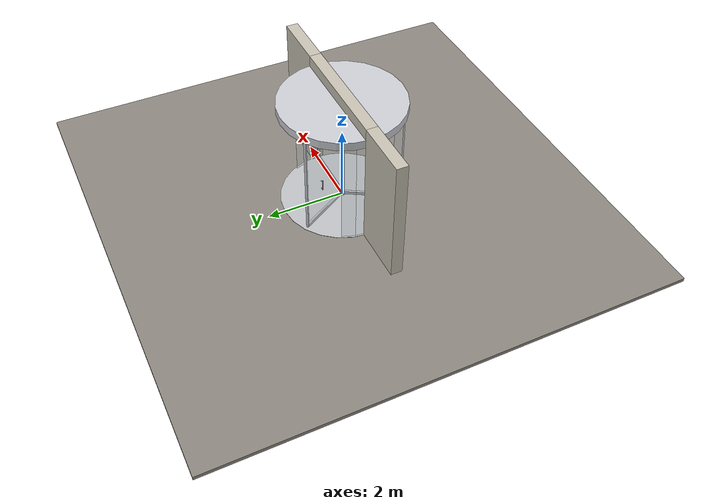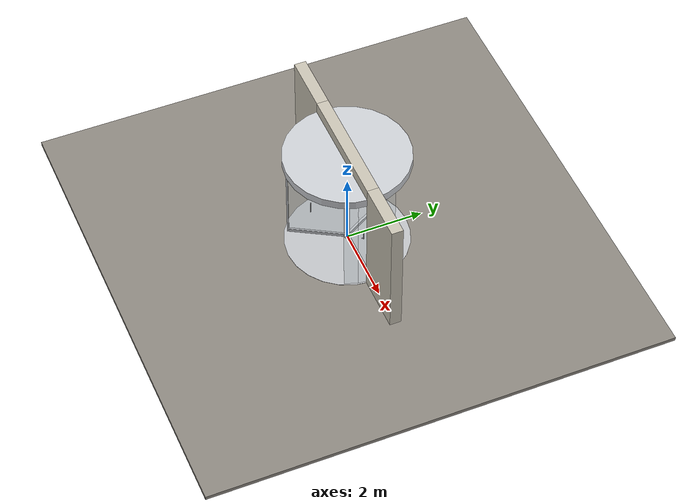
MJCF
<?xml version="1.0" ?>
<mujoco model="db0777_revolving_full">
  <compiler angle="radian" meshdir="../../hardware" texturedir="../../textures" autolimits="true" inertiafromgeom="false"/>
  <option timestep="0.002" integrator="implicitfast" cone="elliptic" impratio="10" noslip_iterations="3">
    <flag multiccd="enable"/>
  </option>
  <size memory="16M"/>
  <default>
    <geom condim="4" solref="0.005 1" solimp="0.95 0.99 0.001"/>
    <joint solreflimit="0.005 1" solimplimit="0.95 0.99 0.001"/>
    <tendon solreflimit="0.005 1"/>
    <equality solref="0.002 1"/>
  </default>
  <visual>
    <headlight ambient="0.4 0.4 0.4" diffuse="0.7 0.7 0.7" specular="0.2 0.2 0.2"/>
    <quality shadowsize="4096"/>
    <map znear="0.01" zfar="60"/>
  </visual>
  <asset>
    <material name="mat_floor" rgba="0.55 0.53 0.5 1" specular="0.2" shininess="0.15" reflectance="0"/>
    <material name="mat_wall" rgba="0.78 0.76 0.7 1" specular="0.2" shininess="0.1" reflectance="0"/>
    <material name="mat_frame" rgba="0.8 0.81 0.83 1" specular="0.8" shininess="0.6" reflectance="0.4"/>
    <material name="mat_drum_glass" rgba="0.85 0.92 0.95 0.25" specular="0.2" shininess="0.95" reflectance="0.1"/>
    <material name="mat_floor_ring" rgba="0.75 0.76 0.77 1" specular="0.8" shininess="0.65" reflectance="0.4"/>
    <material name="mat_op_stainless" rgba="0.75 0.76 0.77 1" specular="0.8" shininess="0.65" reflectance="0.4"/>
    <texture name="skybox" type="skybox" builtin="gradient" rgb1="0.6 0.7 0.85" rgb2="0.9 0.92 0.95" width="256" height="256"/>
  </asset>
  <worldbody>
    <light name="sun" pos="1.5 -2.5 4" dir="-0.3 0.5 -0.8" directional="true" diffuse="0.8 0.8 0.8" specular="0.3 0.3 0.3" castshadow="true"/>
    <light name="fill" pos="-1.5 2.5 3" dir="0.3 -0.5 -0.7" directional="true" diffuse="0.35 0.35 0.4" castshadow="false"/>
    <camera name="robot_view" pos="0 -3.53125 2.48875" xyaxes="1 0 0 0 0.26963 0.962964" fovy="52"/>
    <camera name="far_view" pos="0 3.53125 2.48875" xyaxes="-1 0 0 0 -0.26963 0.962964" fovy="52"/>
    <camera name="iso" pos="2.68375 -2.96625 3.05375" xyaxes="0.741536 0.670913 0 -0.242917 0.268487 0.932151" fovy="46"/>
    <camera name="detail_handle" pos="0.55 -1.1 1.35" xyaxes="0.975133 0.221621 0 -0.065674 0.288965 0.955084" fovy="38"/>
    <geom name="floor" type="box" size="6 6 0.05" pos="0 0 -0.05" material="mat_floor" group="0" contype="1" conaffinity="1" friction="0.8 0.005 0.0001" density="2400"/>
    <geom name="wall_left" type="box" size="0.725 0.15 1.65" pos="-2.275 0 1.65" material="mat_wall" group="0" contype="1" conaffinity="1" friction="0.6 0.005 0.0001" density="800"/>
    <geom name="wall_right" type="box" size="0.725 0.15 1.65" pos="2.275 0 1.65" material="mat_wall" group="0" contype="1" conaffinity="1" friction="0.6 0.005 0.0001" density="800"/>
    <geom name="wall_header" type="box" size="1.55 0.15 0.15" pos="0 0 3.15" material="mat_wall" group="0" contype="1" conaffinity="1" friction="0.6 0.005 0.0001" density="800"/>
    <geom name="drum_0" type="box" size="0.172544 0.006 1.3925" pos="1.510443 0.170186 1.3925" quat="0.666347 0 0 0.745642" material="mat_drum_glass" group="0" contype="1" conaffinity="1" friction="0.6 0.005 0.0001" density="2500"/>
    <geom name="drum_1" type="box" size="0.172544 0.006 1.3925" pos="1.434703 0.502024 1.3925" quat="0.578671 0 0 0.815561" material="mat_drum_glass" group="0" contype="1" conaffinity="1" friction="0.6 0.005 0.0001" density="2500"/>
    <geom name="drum_12" type="box" size="0.172544 0.006 1.3925" pos="-1.434703 0.502024 1.3925" quat="-0.578671 0 0 0.815561" material="mat_drum_glass" group="0" contype="1" conaffinity="1" friction="0.6 0.005 0.0001" density="2500"/>
    <geom name="drum_13" type="box" size="0.172544 0.006 1.3925" pos="-1.510443 0.170186 1.3925" quat="-0.666347 0 0 0.745642" material="mat_drum_glass" group="0" contype="1" conaffinity="1" friction="0.6 0.005 0.0001" density="2500"/>
    <geom name="drum_14" type="box" size="0.172544 0.006 1.3925" pos="-1.510443 -0.170186 1.3925" quat="-0.745642 0 0 0.666347" material="mat_drum_glass" group="0" contype="1" conaffinity="1" friction="0.6 0.005 0.0001" density="2500"/>
    <geom name="drum_15" type="box" size="0.172544 0.006 1.3925" pos="-1.434703 -0.502024 1.3925" quat="-0.815561 0 0 0.578671" material="mat_drum_glass" group="0" contype="1" conaffinity="1" friction="0.6 0.005 0.0001" density="2500"/>
    <geom name="drum_26" type="box" size="0.172544 0.006 1.3925" pos="1.434703 -0.502024 1.3925" quat="-0.815561 0 0 -0.578671" material="mat_drum_glass" group="0" contype="1" conaffinity="1" friction="0.6 0.005 0.0001" density="2500"/>
    <geom name="drum_27" type="box" size="0.172544 0.006 1.3925" pos="1.510443 -0.170186 1.3925" quat="-0.745642 0 0 -0.666347" material="mat_drum_glass" group="0" contype="1" conaffinity="1" friction="0.6 0.005 0.0001" density="2500"/>
    <geom name="drum_canopy" type="cylinder" size="1.58 0.1075" pos="0 0 2.8925" material="mat_frame" group="0" contype="1" conaffinity="1" friction="0.6 0.005 0.0001" density="300"/>
    <geom name="rotor_top_bearing" type="cylinder" size="0.075 0.003" pos="0 0 2.782" material="mat_frame" group="0" contype="1" conaffinity="1" friction="0.6 0.005 0.0001" density="2700"/>
    <geom name="drum_floor_ring" type="cylinder" size="1.58 0.003" pos="0 0 0.003" material="mat_floor_ring" group="1" contype="0" conaffinity="0" density="7900"/>
    <geom name="rotor_floor_pivot" type="cylinder" size="0.075 0.003" pos="0 0 0.009" material="mat_frame" group="0" contype="1" conaffinity="1" friction="0.6 0.005 0.0001" density="2700"/>
    <site name="approach_point" pos="0 -2.5 0" quat="1 0 0 0" size="0.05" rgba="0.2 0.9 0.2 0.5" group="4"/>
    <site name="goal_point" pos="0 2.5 0" quat="1 0 0 0" size="0.05" rgba="0.2 0.9 0.2 0.5" group="4"/>
    <site name="door_plane_center" pos="0 0 1.35" quat="1 0 0 0" size="0.02" rgba="0.2 0.9 0.2 0.5" group="4"/>
    <body name="rotor" pos="0 0 0">
      <inertial pos="0 0 1.394893" mass="300.725" quat="-0.5 0.5 0.5 0.5" diaginertia="229.177444446 362.299273582 362.299273582"/>
      <joint name="rotor_hinge" type="hinge" axis="0 0 1" limited="false" damping="53" frictionloss="5.97597" armature="0.5"/>
      <geom name="rotor_shaft" type="cylinder" size="0.06 1.375" pos="0 0 1.395" material="mat_frame" group="0" contype="1" conaffinity="1" friction="0.6 0.005 0.0001" density="2700"/>
      <geom name="rotor_pintle_b" type="cylinder" size="0.03 0.008" pos="0 0 0.016" material="mat_frame" group="1" contype="0" conaffinity="0" density="2700"/>
      <geom name="rotor_pintle_t" type="cylinder" size="0.03 0.0085" pos="0 0 2.7745" material="mat_frame" group="1" contype="0" conaffinity="0" density="2700"/>
      <geom name="wing_0_glass" type="box" size="0.73 0.005 1.3" pos="0.75 0 1.4" material="mat_drum_glass" group="0" contype="1" conaffinity="1" friction="0.6 0.005 0.0001" density="2500"/>
      <geom name="wing_0_stile" type="box" size="0.02 0.03 1.375" pos="1.48 0 1.395" material="mat_frame" group="0" contype="1" conaffinity="1" friction="0.6 0.005 0.0001" density="2700"/>
      <geom name="wing_0_rail_b" type="box" size="0.73 0.03 0.04" pos="0.73 0 0.06" material="mat_frame" group="0" contype="1" conaffinity="1" friction="0.6 0.005 0.0001" density="2700"/>
      <geom name="wing_0_rail_t" type="box" size="0.73 0.03 0.04" pos="0.73 0 2.73" material="mat_frame" group="0" contype="1" conaffinity="1" friction="0.6 0.005 0.0001" density="2700"/>
      <geom name="wing_0_bar" type="capsule" size="0.012 0.15" pos="0.9 0.055 1" material="mat_op_stainless" group="0" contype="1" conaffinity="1" friction="0.7 0.01 0.0001" density="7900"/>
      <geom name="wing_0_bar_stud_d" type="cylinder" size="0.009 0.028" pos="0.9 0.031 0.88" quat="0.707107 -0.707107 0 0" material="mat_op_stainless" group="1" contype="0" conaffinity="0" density="7900"/>
      <geom name="wing_0_bar_stud_u" type="cylinder" size="0.009 0.028" pos="0.9 0.031 1.12" quat="0.707107 -0.707107 0 0" material="mat_op_stainless" group="1" contype="0" conaffinity="0" density="7900"/>
      <geom name="wing_1_glass" type="box" size="0.73 0.005 1.3" pos="-0.375 0.649519 1.4" quat="0.5 0 0 0.866025" material="mat_drum_glass" group="0" contype="1" conaffinity="1" friction="0.6 0.005 0.0001" density="2500"/>
      <geom name="wing_1_stile" type="box" size="0.02 0.03 1.375" pos="-0.74 1.281718 1.395" quat="0.5 0 0 0.866025" material="mat_frame" group="0" contype="1" conaffinity="1" friction="0.6 0.005 0.0001" density="2700"/>
      <geom name="wing_1_rail_b" type="box" size="0.73 0.03 0.04" pos="-0.365 0.632199 0.06" quat="0.5 0 0 0.866025" material="mat_frame" group="0" contype="1" conaffinity="1" friction="0.6 0.005 0.0001" density="2700"/>
      <geom name="wing_1_rail_t" type="box" size="0.73 0.03 0.04" pos="-0.365 0.632199 2.73" quat="0.5 0 0 0.866025" material="mat_frame" group="0" contype="1" conaffinity="1" friction="0.6 0.005 0.0001" density="2700"/>
      <geom name="wing_1_bar" type="capsule" size="0.012 0.15" pos="-0.497631 0.751923 1" material="mat_op_stainless" group="0" contype="1" conaffinity="1" friction="0.7 0.01 0.0001" density="7900"/>
      <geom name="wing_1_bar_stud_d" type="cylinder" size="0.009 0.028" pos="-0.476847 0.763923 0.88" quat="0.707107 0.353553 -0.612372 0" material="mat_op_stainless" group="1" contype="0" conaffinity="0" density="7900"/>
      <geom name="wing_1_bar_stud_u" type="cylinder" size="0.009 0.028" pos="-0.476847 0.763923 1.12" quat="0.707107 0.353553 -0.612372 0" material="mat_op_stainless" group="1" contype="0" conaffinity="0" density="7900"/>
      <geom name="wing_2_glass" type="box" size="0.73 0.005 1.3" pos="-0.375 -0.649519 1.4" quat="-0.5 0 0 0.866025" material="mat_drum_glass" group="0" contype="1" conaffinity="1" friction="0.6 0.005 0.0001" density="2500"/>
      <geom name="wing_2_stile" type="box" size="0.02 0.03 1.375" pos="-0.74 -1.281718 1.395" quat="-0.5 0 0 0.866025" material="mat_frame" group="0" contype="1" conaffinity="1" friction="0.6 0.005 0.0001" density="2700"/>
      <geom name="wing_2_rail_b" type="box" size="0.73 0.03 0.04" pos="-0.365 -0.632199 0.06" quat="-0.5 0 0 0.866025" material="mat_frame" group="0" contype="1" conaffinity="1" friction="0.6 0.005 0.0001" density="2700"/>
      <geom name="wing_2_rail_t" type="box" size="0.73 0.03 0.04" pos="-0.365 -0.632199 2.73" quat="-0.5 0 0 0.866025" material="mat_frame" group="0" contype="1" conaffinity="1" friction="0.6 0.005 0.0001" density="2700"/>
      <geom name="wing_2_bar" type="capsule" size="0.012 0.15" pos="-0.402369 -0.806923 1" material="mat_op_stainless" group="0" contype="1" conaffinity="1" friction="0.7 0.01 0.0001" density="7900"/>
      <geom name="wing_2_bar_stud_d" type="cylinder" size="0.009 0.028" pos="-0.423153 -0.794923 0.88" quat="0.707107 0.353553 0.612372 0" material="mat_op_stainless" group="1" contype="0" conaffinity="0" density="7900"/>
      <geom name="wing_2_bar_stud_u" type="cylinder" size="0.009 0.028" pos="-0.423153 -0.794923 1.12" quat="0.707107 0.353553 0.612372 0" material="mat_op_stainless" group="1" contype="0" conaffinity="0" density="7900"/>
      <site name="wing_0_push" pos="0.9 0.055 1" quat="1 0 0 0" size="0.015" rgba="0.2 0.9 0.2 0.5" group="4"/>
      <site name="wing_1_push" pos="-0.497631 0.751923 1" quat="1 0 0 0" size="0.015" rgba="0.2 0.9 0.2 0.5" group="4"/>
      <site name="wing_2_push" pos="-0.402369 -0.806923 1" quat="1 0 0 0" size="0.015" rgba="0.2 0.9 0.2 0.5" group="4"/>
    </body>
  </worldbody>
  <sensor>
    <jointpos name="rotor_hinge_pos" joint="rotor_hinge"/>
    <jointvel name="rotor_hinge_vel" joint="rotor_hinge"/>
  </sensor>
</mujoco>
